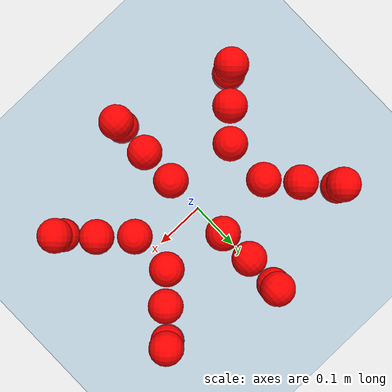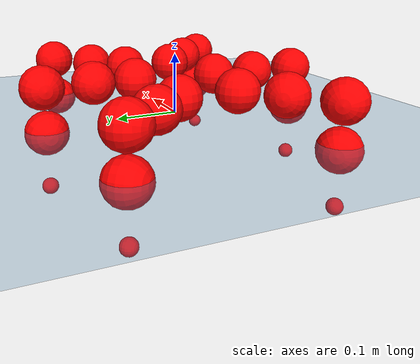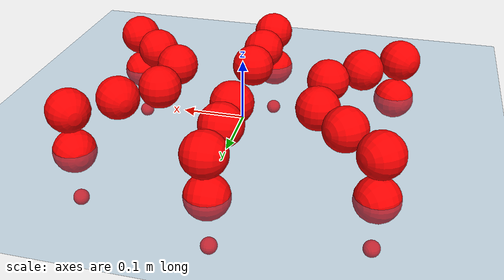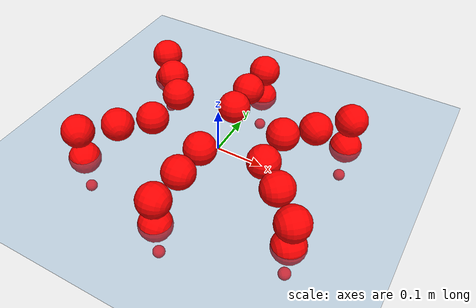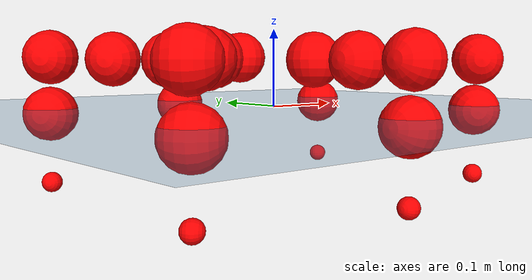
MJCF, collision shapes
<mujoco model="Golem">
  <compiler angle="radian" assetdir="assets" balanceinertia="true" inertiafromgeom="false"/>

  <option timestep="0.005" density="1.2" viscosity="2e-05"/>

  <size nkey="1"/>

  <visual>
    <quality shadowsize="8192"/>
    <map shadowclip="0.5"/>
  </visual>

  <default>
    <default class="/">
      <joint armature="0.01" damping="0.01" frictionloss="0.01"/>
      <geom contype="0" conaffinity="0" group="1" solref="-1000 -80"/>
      <site size="0.01 0.005 0.005" group="5"/>
      <general forcelimited="true" biastype="affine" gainprm="25" biasprm="0 -25 -0.5"/>
      <default class="visual">
        <geom type="mesh" group="2"/>
      </default>
      <default class="collision">
        <geom group="3"/>
      </default>
      <default class="foot">
        <geom size="0.01 0 0" condim="6" group="4" priority="1" solimp="0.015 1 0.01"/>
      </default>
      <default class="reward_collision_sphere">
        <geom group="5" rgba="1 0 0 1"/>
      </default>
    </default>
  </default>

  <asset>
    <texture type="skybox" colorspace="auto" name="//unnamed_texture_0" builtin="gradient" rgb1="0.95 0.95 0.95" rgb2="0.95 0.95 0.95" width="100" height="600"/>
    <texture type="2d" colorspace="auto" name="texplane" builtin="checker" rgb1="0.345 0.575 0.748" rgb2="0.345 0.575 0.748" markrgb="1 1 1" width="512" height="512"/>
    <material name="MatPlane" class="/" texture="texplane" texuniform="true" texrepeat="2 2" specular="0.9"/>
    <mesh name="body" class="/" file="body.stl" scale="0.001 0.001 0.001"/>
    <mesh name="coxa" class="/" file="coxa.stl" scale="0.001 0.001 0.001"/>
    <mesh name="femur" class="/" file="femur.stl" scale="0.001 0.001 0.001"/>
    <mesh name="tibia" class="/" file="tibia.stl" scale="0.001 0.001 0.001"/>
    <mesh name="tarsus" class="/" file="tarsus.stl" scale="0.001 0.001 0.001"/>
  </asset>

  <worldbody>
    <geom name="floor" class="/" size="100 100 0.125" type="plane" group="0" material="MatPlane"/>
    <light name="toplight_shadow" class="/" pos="0 0 5" dir="0.0990148 0.0990148 -0.990148" type="directional" ambient="0.04 0.04 0.04" diffuse="0.55 0.55 0.55" specular="0.12 0.12 0.12"/>
    <light name="toplight_fill" class="/" pos="0 0 5" dir="0.0990148 0.0990148 -0.990148" type="directional" castshadow="false" ambient="0.04 0.04 0.04" diffuse="0.3 0.3 0.3" specular="0.08 0.08 0.08"/>
    <body name="trunk" pos="-0.00107325 9.78645e-05 -0.00273355" quat="1 0.000393582 0.000209726 7.36392e-05">
      <inertial pos="0.000687681 0.00209796 -0.00531382" quat="0.999997 0.00156581 0.00101068 0.00138767" mass="2.37879" diaginertia="0.00363397 0.00224607 0.010975"/>
      <joint name="//unnamed_joint_0" type="free"/>
      <geom name="//unnamed_geom_1" class="/" pos="0 0 0.0648853" quat="1 0 0 0" type="mesh" rgba="0.9 0.9 0.9 1" mesh="body"/>
      <site name="imu" class="/" pos="0.101889 -0.000804302 0.114693" size="0.00855052"/>
      <camera name="track" class="/" pos="0 -1.47928 0" quat="0.707107 0.707107 0 0" mode="trackcom"/>
      <camera name="ego_camera" class="/" pos="0.105519 0 0.101383" quat="-0.5 -0.5 0.5 0.5"/>
      <body name="coxa_RR" pos="-0.146589 -0.062318 0.0647398" quat="0.382714 -0.00125122 6.12387e-06 -0.923866">
        <inertial pos="-0.00276042 -0.00170128 -0.000294456" quat="0.99991 -0.0079309 -0.00897769 -0.00603666" mass="0.124933" diaginertia="0.00350843 0.00218233 0.0102928"/>
        <joint name="coxa_joint_RR" class="/" pos="0 0 0" axis="-0.00574476 0.001984 -0.999982" stiffness="0.000919992" range="-3.15686 3.11694" armature="0.00871878" damping="0.0133844" frictionloss="0.00969929"/>
        <geom name="//unnamed_geom_2" class="/" type="mesh" rgba="0.2 0.2 0.2 1" mesh="coxa"/>
        <geom name="//unnamed_geom_3" class="reward_collision_sphere" size="0.0342021" pos="-0.0243505 0 0"/>
        <body name="femur_RR" pos="0.0483038 0.00192556 -0.00023951" quat="0.499924 -0.499921 0.500347 0.499808">
          <inertial pos="0.000308968 -0.000546219 0.00269238" quat="1 0.000239431 5.95461e-05 -0.000230312" mass="0.125332" diaginertia="0.00352379 0.0022235 0.0103762"/>
          <joint name="femur_joint_RR" class="/" pos="0 0 0" axis="0.00598426 0.0111507 -0.99992" range="-3.15065 3.13645" armature="0.00814775" damping="0" frictionloss="0.00872012"/>
          <geom name="//unnamed_geom_4" class="/" type="mesh" rgba="0.9 0.9 0.9 1" mesh="femur"/>
          <geom name="//unnamed_geom_5" class="reward_collision_sphere" size="0.0342021"/>
          <body name="tibia_RR" pos="0.00119938 -0.0801108 -0.00116111" quat="-2.27844e-05 1 3.8514e-05 3.58692e-05">
            <inertial pos="-0.00090924 0.00278918 -0.00273809" quat="0.999909 0.00962722 -0.00599245 -0.00735553" mass="0.123795" diaginertia="0.00335976 0.00219806 0.0104225"/>
            <joint name="tibia_joint_RR" class="/" pos="0 0 0" axis="-0.00115627 0.00154265 0.999998" stiffness="0.00151197" range="-3.13858 3.09371" armature="0.00834714" damping="0.0102007" frictionloss="0.00817255"/>
            <geom name="//unnamed_geom_6" class="/" type="mesh" rgba="0.2 0.2 0.2 1" mesh="tibia"/>
            <geom name="//unnamed_geom_7" class="reward_collision_sphere" size="0.0342021"/>
            <body name="tarsus_RR" pos="0.0727592 -0.00276026 -0.00267837" quat="0.999999 -0.000704265 -0.00114976 -0.000351542">
              <inertial pos="0.048385 -0.00233106 0.000406707" quat="0.504301 0.497336 0.499561 0.498775" mass="0.123192" diaginertia="0.00353941 0.00233093 0.0109985"/>
              <joint name="tarsus_joint_RR" class="/" pos="0 0 0" axis="0.000464806 0.00340593 0.999994" range="-3.13862 3.14995" armature="0.00836464" damping="0" frictionloss="0.00900107"/>
              <geom name="//unnamed_geom_8" class="/" type="mesh" rgba="0.9 0.9 0.9 1" mesh="tarsus"/>
              <geom name="foot_1" class="foot" size="0.00867628" pos="0.0909084 0 0" quat="0 -0.707107 0 0.707107"/>
              <geom name="//unnamed_geom_10" class="reward_collision_sphere" size="0.0342021"/>
              <geom name="//unnamed_geom_11" class="reward_collision_sphere" size="0.0128258" pos="0.0872559 0 0"/>
              <site name="foot_1" class="foot" pos="0.0909084 0 0" quat="0 -0.707107 0 0.707107" size="0.00855052"/>
            </body>
          </body>
        </body>
      </body>
      <body name="coxa_RM" pos="0.00197463 -0.0971342 0.0635023" quat="0.706783 0.000137641 -0.000377601 -0.70743">
        <inertial pos="-0.000139282 -0.00170578 -0.0022857" quat="0.999996 -0.00152263 -0.00180222 -0.00129504" mass="0.121012" diaginertia="0.00331541 0.00207533 0.0104234"/>
        <joint name="coxa_joint_RM" class="/" pos="0 0 0" axis="0.00298009 -0.00355291 -0.999989" stiffness="0.000521695" range="-3.13663 3.15917" armature="0.00824831" damping="0.0168384" frictionloss="0.00933731"/>
        <geom name="//unnamed_geom_12" class="/" type="mesh" rgba="0.2 0.2 0.2 1" mesh="coxa"/>
        <geom name="//unnamed_geom_13" class="reward_collision_sphere" size="0.0342021" pos="-0.0243505 0 0"/>
        <body name="femur_RM" pos="0.0497724 -0.00125831 -0.000691479" quat="0.499801 -0.499671 0.500957 0.499571">
          <inertial pos="0.000939884 -0.00199193 0.000348312" quat="0.999908 -0.00733908 0.0061664 -0.0095992" mass="0.123873" diaginertia="0.00363557 0.00218822 0.0106561"/>
          <joint name="femur_joint_RM" class="/" pos="0 0 0" axis="-0.000281008 0.000136573 -1" stiffness="0.00124944" range="-3.19266 3.19215" armature="0.00969712" damping="0.0266658" frictionloss="0.00842203"/>
          <geom name="//unnamed_geom_14" class="/" type="mesh" rgba="0.9 0.9 0.9 1" mesh="femur"/>
          <geom name="//unnamed_geom_15" class="reward_collision_sphere" size="0.0342021"/>
          <body name="tibia_RM" pos="-0.000864173 -0.0799848 -0.000587058" quat="-3.23774e-05 1 3.16399e-05 1.27094e-05">
            <inertial pos="0.000214931 0.000375297 -0.00263197" quat="0.999916 0.0105775 0.00695339 -0.00264852" mass="0.116768" diaginertia="0.00341209 0.00214232 0.0107114"/>
            <joint name="tibia_joint_RM" class="/" pos="0 0 0" axis="0.00176818 -0.00530841 0.999984" stiffness="0.00744106" range="-3.19174 3.08633" armature="0.00739337" damping="0" frictionloss="0.0086191"/>
            <geom name="//unnamed_geom_16" class="/" type="mesh" rgba="0.2 0.2 0.2 1" mesh="tibia"/>
            <geom name="//unnamed_geom_17" class="reward_collision_sphere" size="0.0342021"/>
            <body name="tarsus_RM" pos="0.0714186 -0.00179991 0.00316759" quat="1 5.37705e-05 -0.000301748 2.49709e-05">
              <inertial pos="0.0482592 0.000867496 -0.000276798" quat="0.492887 0.505294 0.495433 0.506248" mass="0.124841" diaginertia="0.00356808 0.00221767 0.0108427"/>
              <joint name="tarsus_joint_RM" class="/" pos="0 0 0" axis="-0.00497731 -0.00137628 0.999987" range="-3.14543 3.18734" armature="0.00862605" damping="0" frictionloss="0.009007"/>
              <geom name="//unnamed_geom_18" class="/" type="mesh" rgba="0.9 0.9 0.9 1" mesh="tarsus"/>
              <geom name="foot_2" class="foot" size="0.0076942" pos="0.0909084 0 0" quat="0 -0.707107 0 0.707107"/>
              <geom name="//unnamed_geom_20" class="reward_collision_sphere" size="0.0342021"/>
              <geom name="//unnamed_geom_21" class="reward_collision_sphere" size="0.0128258" pos="0.0872559 0 0"/>
              <site name="foot_2" class="foot" pos="0.0909084 0 0" quat="0 -0.707107 0 0.707107" size="0.00855052"/>
            </body>
          </body>
        </body>
      </body>
      <body name="coxa_RF" pos="0.143012 -0.060445 0.0641417" quat="0.923638 0.000527963 0.00109826 -0.383264">
        <inertial pos="0.00273695 -0.00270007 0.00140877" quat="0.999988 -0.00453708 0.001683 0.000105857" mass="0.126275" diaginertia="0.00363176 0.0022192 0.0106854"/>
        <joint name="coxa_joint_RF" class="/" pos="0 0 0" axis="-0.00147155 0.010003 -0.999949" range="-3.13479 3.16065" armature="0.00847173" damping="0" frictionloss="0.00843532"/>
        <geom name="//unnamed_geom_22" class="/" type="mesh" rgba="0.2 0.2 0.2 1" mesh="coxa"/>
        <geom name="//unnamed_geom_23" class="reward_collision_sphere" size="0.0342021" pos="-0.0243505 0 0"/>
        <body name="femur_RF" pos="0.0484631 0.00209992 0.0021862" quat="0.500553 -0.498958 0.500433 0.500055">
          <inertial pos="-0.000788 0.000669083 -0.000578528" quat="0.999971 -0.00735907 -2.11827e-05 -0.00210108" mass="0.12366" diaginertia="0.00349537 0.00216797 0.0106194"/>
          <joint name="femur_joint_RF" class="/" pos="0 0 0" axis="0.00244756 0.00164778 -0.999996" range="-3.11827 3.16607" armature="0.00904646" damping="0.00969223" frictionloss="0.00835997"/>
          <geom name="//unnamed_geom_24" class="/" type="mesh" rgba="0.9 0.9 0.9 1" mesh="femur"/>
          <geom name="//unnamed_geom_25" class="reward_collision_sphere" size="0.0342021"/>
          <body name="tibia_RF" pos="0.00174106 -0.0803721 -0.000321541" quat="0.000216309 1 -0.000545841 0.000115465">
            <inertial pos="0.00070198 -0.00242206 -1.37271e-05" quat="0.999997 -0.00197819 -0.000558999 -0.00108208" mass="0.122038" diaginertia="0.00342217 0.00213383 0.0107268"/>
            <joint name="tibia_joint_RF" class="/" pos="0 0 0" axis="0.00271637 -0.00175325 0.999995" stiffness="0.005459" range="-3.1429 3.08502" armature="0.00854899" damping="0" frictionloss="0.00852348"/>
            <geom name="//unnamed_geom_26" class="/" type="mesh" rgba="0.2 0.2 0.2 1" mesh="tibia"/>
            <geom name="//unnamed_geom_27" class="reward_collision_sphere" size="0.0342021"/>
            <body name="tarsus_RF" pos="0.0687302 -0.00306079 1.64865e-05" quat="0.999999 -0.000335838 -0.000918286 0.000416531">
              <inertial pos="0.0481438 0.00017493 -0.000982145" quat="0.500073 0.500173 0.499866 0.499889" mass="0.126722" diaginertia="0.00354288 0.00228961 0.0107631"/>
              <joint name="tarsus_joint_RF" class="/" pos="0 0 0" axis="-0.00344122 -0.00149409 0.999993" range="-3.15217 3.15928" armature="0.00809045" damping="0" frictionloss="0.0089585"/>
              <geom name="//unnamed_geom_28" class="/" type="mesh" rgba="0.9 0.9 0.9 1" mesh="tarsus"/>
              <geom name="foot_3" class="foot" size="0.00836109" pos="0.0909084 0 0" quat="0 -0.707107 0 0.707107"/>
              <geom name="//unnamed_geom_30" class="reward_collision_sphere" size="0.0342021"/>
              <geom name="//unnamed_geom_31" class="reward_collision_sphere" size="0.0128258" pos="0.0872559 0 0"/>
              <site name="foot_3" class="foot" pos="0.0909084 0 0" quat="0 -0.707107 0 0.707107" size="0.00855052"/>
            </body>
          </body>
        </body>
      </body>
      <body name="coxa_LR" pos="-0.145085 0.0661856 0.0631386" quat="0.382531 -2.75807e-05 -9.00742e-05 0.923943">
        <inertial pos="0.000629823 -0.000272652 -0.00202704" quat="0.999938 -0.0109795 0.00177413 -0.000481281" mass="0.120412" diaginertia="0.00341222 0.00220842 0.0104769"/>
        <joint name="coxa_joint_LR" class="/" pos="0 0 0" axis="-0.00448201 -0.007332 -0.999963" stiffness="0.0078915" range="-3.14296 3.15953" armature="0.0086215" damping="0.0155275" frictionloss="0.00960153"/>
        <geom name="//unnamed_geom_32" class="/" type="mesh" rgba="0.2 0.2 0.2 1" mesh="coxa"/>
        <geom name="//unnamed_geom_33" class="reward_collision_sphere" size="0.0342021" pos="-0.0243505 0 0"/>
        <body name="femur_LR" pos="0.0470604 -0.00360294 0.000795495" quat="0.50026 -0.500618 0.499824 0.499298">
          <inertial pos="-1.61644e-05 -0.000770652 -0.0028219" quat="0.999983 -0.00138829 0.000651813 -0.00569275" mass="0.122667" diaginertia="0.00339874 0.00213382 0.010275"/>
          <joint name="femur_joint_LR" class="/" pos="0 0 0" axis="0.0119548 0.00479591 0.999917" range="-3.1447 3.14094" armature="0.00931824" damping="0.0126415" frictionloss="0.00894141"/>
          <geom name="//unnamed_geom_34" class="/" type="mesh" rgba="0.9 0.9 0.9 1" mesh="femur"/>
          <geom name="//unnamed_geom_35" class="reward_collision_sphere" size="0.0342021"/>
          <body name="tibia_LR" pos="-0.00223326 -0.080982 -0.00286211" quat="-4.26235e-05 1 -0.000121995 3.02768e-05">
            <inertial pos="0.000539936 0.00280923 7.67958e-05" quat="0.999988 0.00450925 0.00176371 0.000376286" mass="0.127812" diaginertia="0.00346862 0.00224509 0.0112825"/>
            <joint name="tibia_joint_LR" class="/" pos="0 0 0" axis="-0.0044859 0.0108056 -0.999932" stiffness="0.000518322" range="-3.08904 3.08999" armature="0.00959364" damping="0" frictionloss="0.00944463"/>
            <geom name="//unnamed_geom_36" class="/" type="mesh" rgba="0.2 0.2 0.2 1" mesh="tibia"/>
            <geom name="//unnamed_geom_37" class="reward_collision_sphere" size="0.0342021"/>
            <body name="tarsus_LR" pos="0.0713256 0.0010925 0.000243523" quat="1 0.00040741 0.000114492 6.99864e-05">
              <inertial pos="0.0515743 0.00134412 -0.00221898" quat="0.500499 0.499524 0.500289 0.499688" mass="0.123879" diaginertia="0.00359341 0.00222882 0.0105058"/>
              <joint name="tarsus_joint_LR" class="/" pos="0 0 0" axis="-0.00383993 -0.00362657 -0.999986" range="-3.10571 3.11052" armature="0.00750984" damping="0.0182168" frictionloss="0.00852897"/>
              <geom name="//unnamed_geom_38" class="/" type="mesh" rgba="0.9 0.9 0.9 1" mesh="tarsus"/>
              <geom name="foot_4" class="foot" size="0.00866537" pos="0.0909084 0 0" quat="0.707107 0 -0.707107 0"/>
              <geom name="//unnamed_geom_40" class="reward_collision_sphere" size="0.0342021"/>
              <geom name="//unnamed_geom_41" class="reward_collision_sphere" size="0.0128258" pos="0.0872559 0 0"/>
              <site name="foot_4" class="foot" pos="0.0909084 0 0" quat="0.707107 0 -0.707107 0" size="0.00855052"/>
            </body>
          </body>
        </body>
      </body>
      <body name="coxa_LM" pos="1.17312e-05 0.0937859 0.0660927" quat="0.7072 -0.000167788 0.000233692 0.707013">
        <inertial pos="0.000210744 -0.00275028 0.00252935" quat="0.999989 -0.00418029 0.00087018 -0.00202785" mass="0.129265" diaginertia="0.00356953 0.00224361 0.0108834"/>
        <joint name="coxa_joint_LM" class="/" pos="0 0 0" axis="-0.00552195 -0.0116432 -0.999917" range="-3.13995 3.14131" armature="0.00742592" damping="0.0129192" frictionloss="0.00862207"/>
        <geom name="//unnamed_geom_42" class="/" type="mesh" rgba="0.2 0.2 0.2 1" mesh="coxa"/>
        <geom name="//unnamed_geom_43" class="reward_collision_sphere" size="0.0342021" pos="-0.0243505 0 0"/>
        <body name="femur_LM" pos="0.0449692 0.00295478 0.000920147" quat="0.499942 -0.500023 0.500128 0.499907">
          <inertial pos="-0.0026366 0.00150189 -0.00197349" quat="1 9.02146e-05 -0.000148544 -0.000220987" mass="0.121558" diaginertia="0.00342085 0.00217651 0.0102323"/>
          <joint name="femur_joint_LM" class="/" pos="0 0 0" axis="0.0069413 0.0140708 0.999877" stiffness="0.00785662" range="-3.1391 3.14077" armature="0.00896938" damping="0.00069637" frictionloss="0.00962266"/>
          <geom name="//unnamed_geom_44" class="/" type="mesh" rgba="0.9 0.9 0.9 1" mesh="femur"/>
          <geom name="//unnamed_geom_45" class="reward_collision_sphere" size="0.0342021"/>
          <body name="tibia_LM" pos="0.00051645 -0.0790526 -0.000704975" quat="-3.19285e-05 1 6.66011e-05 -0.000289673">
            <inertial pos="-0.00114304 -0.000310717 0.00238899" quat="0.999921 0.0102225 -0.00727096 -0.000667434" mass="0.122199" diaginertia="0.00351936 0.00224638 0.0104691"/>
            <joint name="tibia_joint_LM" class="/" pos="0 0 0" axis="0.00265744 0.00289717 -0.999992" stiffness="0.00683155" range="-3.15546 3.1934" armature="0.00797188" damping="0" frictionloss="0.00882078"/>
            <geom name="//unnamed_geom_46" class="/" type="mesh" rgba="0.2 0.2 0.2 1" mesh="tibia"/>
            <geom name="//unnamed_geom_47" class="reward_collision_sphere" size="0.0342021"/>
            <body name="tarsus_LM" pos="0.0709123 -0.0032127 -0.00115424" quat="1 1.36568e-05 -1.83097e-05 1.96402e-05">
              <inertial pos="0.0514436 0.000963592 0.000398928" quat="0.499724 0.500101 0.499809 0.500365" mass="0.124602" diaginertia="0.00356352 0.0022335 0.0110215"/>
              <joint name="tarsus_joint_LM" class="/" pos="0 0 0" axis="0.00301723 0.00258234 -0.999992" range="-3.13971 3.12924" armature="0.0087914" damping="0" frictionloss="0.00886241"/>
              <geom name="//unnamed_geom_48" class="/" type="mesh" rgba="0.9 0.9 0.9 1" mesh="tarsus"/>
              <geom name="foot_5" class="foot" size="0.00849288" pos="0.0909084 0 0" quat="0.707107 0 -0.707107 0"/>
              <geom name="//unnamed_geom_50" class="reward_collision_sphere" size="0.0342021"/>
              <geom name="//unnamed_geom_51" class="reward_collision_sphere" size="0.0128258" pos="0.0872559 0 0"/>
              <site name="foot_5" class="foot" pos="0.0909084 0 0" quat="0.707107 0 -0.707107 0" size="0.00855052"/>
            </body>
          </body>
        </body>
      </body>
      <body name="coxa_LF" pos="0.142066 0.0614542 0.0651005" quat="0.923796 9.21154e-05 0.000529856 0.382885">
        <inertial pos="0.00264899 0.000144936 6.44958e-05" quat="0.999907 0.00760419 -0.0112301 -0.00153135" mass="0.12581" diaginertia="0.00363857 0.00219303 0.0107113"/>
        <joint name="coxa_joint_LF" class="/" pos="0 0 0" axis="-0.000789503 -0.00196466 -0.999998" range="-3.15906 3.08399" armature="0.00808771" damping="0.0130822" frictionloss="0.00865096"/>
        <geom name="//unnamed_geom_52" class="/" type="mesh" rgba="0.2 0.2 0.2 1" mesh="coxa"/>
        <geom name="//unnamed_geom_53" class="reward_collision_sphere" size="0.0342021" pos="-0.0243505 0 0"/>
        <body name="femur_LF" pos="0.0461003 -0.00056646 -0.000508211" quat="0.500006 -0.500219 0.500051 0.499725">
          <inertial pos="-0.00264051 0.00210865 -0.000682367" quat="0.999998 -0.000354088 -0.000894683 0.00146206" mass="0.125563" diaginertia="0.00340449 0.0022067 0.0107123"/>
          <joint name="femur_joint_LF" class="/" pos="0 0 0" axis="-0.00105174 -0.0148416 0.999889" range="-3.19454 3.13913" armature="0.00850386" damping="0" frictionloss="0.00856704"/>
          <geom name="//unnamed_geom_54" class="/" type="mesh" rgba="0.9 0.9 0.9 1" mesh="femur"/>
          <geom name="//unnamed_geom_55" class="reward_collision_sphere" size="0.0342021"/>
          <body name="tibia_LF" pos="-0.00173417 -0.0796435 0.00298078" quat="-0.000562884 0.999999 -0.000739319 -0.000626382">
            <inertial pos="-0.00259256 0.000139456 0.000775294" quat="0.999925 0.0047438 0.00252664 0.0110003" mass="0.128978" diaginertia="0.00342656 0.00218833 0.0107205"/>
            <joint name="tibia_joint_LF" class="/" pos="0 0 0" axis="0.00307365 0.00336474 -0.99999" stiffness="0.000988341" range="-3.13632 3.1514" armature="0.00870573" damping="0.00556276" frictionloss="0.00900368"/>
            <geom name="//unnamed_geom_56" class="/" type="mesh" rgba="0.2 0.2 0.2 1" mesh="tibia"/>
            <geom name="//unnamed_geom_57" class="reward_collision_sphere" size="0.0342021"/>
            <body name="tarsus_LF" pos="0.0717803 -0.00218863 0.00123337" quat="1 0.00020864 -0.000327009 8.46956e-05">
              <inertial pos="0.0475019 5.37929e-05 -0.00243993" quat="0.500522 0.49987 0.502969 0.496618" mass="0.116749" diaginertia="0.00338244 0.00214298 0.0103482"/>
              <joint name="tarsus_joint_LF" class="/" pos="0 0 0" axis="-0.00152317 0.00444839 -0.999989" range="-3.12388 3.16216" armature="0.00817777" damping="0.0236874" frictionloss="0.00876023"/>
              <geom name="//unnamed_geom_58" class="/" type="mesh" rgba="0.9 0.9 0.9 1" mesh="tarsus"/>
              <geom name="foot_6" class="foot" size="0.00923405" pos="0.0909084 0 0" quat="0.707107 0 -0.707107 0"/>
              <geom name="//unnamed_geom_60" class="reward_collision_sphere" size="0.0342021"/>
              <geom name="//unnamed_geom_61" class="reward_collision_sphere" size="0.0128258" pos="0.0872559 0 0"/>
              <site name="foot_6" class="foot" pos="0.0909084 0 0" quat="0.707107 0 -0.707107 0" size="0.00855052"/>
            </body>
          </body>
        </body>
      </body>
    </body>
  </worldbody>

  <contact>
    <pair class="/" geom1="floor" geom2="foot_1" name="//unnamed_contact_0"/>
    <pair class="/" geom1="floor" geom2="foot_2" name="//unnamed_contact_1"/>
    <pair class="/" geom1="floor" geom2="foot_3" name="//unnamed_contact_2"/>
    <pair class="/" geom1="floor" geom2="foot_4" name="//unnamed_contact_3"/>
    <pair class="/" geom1="floor" geom2="foot_5" name="//unnamed_contact_4"/>
    <pair class="/" geom1="floor" geom2="foot_6" name="//unnamed_contact_5"/>
  </contact>

  <actuator>
    <general name="coxa_joint_RR" class="/" joint="coxa_joint_RR" forcerange="-6.26987 6.26987" gainprm="20.7874" biasprm="0 -20.7874 -0.461479"/>
    <general name="femur_joint_RR" class="/" joint="femur_joint_RR" forcerange="-6.67495 6.67495" gainprm="20.7874" biasprm="0 -20.7874 -0.461479"/>
    <general name="tibia_joint_RR" class="/" joint="tibia_joint_RR" forcerange="-5.61255 5.61255" gainprm="20.7874" biasprm="0 -20.7874 -0.461479"/>
    <general name="tarsus_joint_RR" class="/" joint="tarsus_joint_RR" forcerange="-6.30019 6.30019" gainprm="20.7874" biasprm="0 -20.7874 -0.461479"/>
    <general name="coxa_joint_RM" class="/" joint="coxa_joint_RM" forcerange="-6.80836 6.80836" gainprm="20.7874" biasprm="0 -20.7874 -0.461479"/>
    <general name="femur_joint_RM" class="/" joint="femur_joint_RM" forcerange="-6.21389 6.21389" gainprm="20.7874" biasprm="0 -20.7874 -0.461479"/>
    <general name="tibia_joint_RM" class="/" joint="tibia_joint_RM" forcerange="-6.33388 6.33388" gainprm="20.7874" biasprm="0 -20.7874 -0.461479"/>
    <general name="tarsus_joint_RM" class="/" joint="tarsus_joint_RM" forcerange="-5.61057 5.61057" gainprm="20.7874" biasprm="0 -20.7874 -0.461479"/>
    <general name="coxa_joint_RF" class="/" joint="coxa_joint_RF" forcerange="-6.84834 6.84834" gainprm="20.7874" biasprm="0 -20.7874 -0.461479"/>
    <general name="femur_joint_RF" class="/" joint="femur_joint_RF" forcerange="-6.2051 6.2051" gainprm="20.7874" biasprm="0 -20.7874 -0.461479"/>
    <general name="tibia_joint_RF" class="/" joint="tibia_joint_RF" forcerange="-6.11465 6.11465" gainprm="20.7874" biasprm="0 -20.7874 -0.461479"/>
    <general name="tarsus_joint_RF" class="/" joint="tarsus_joint_RF" forcerange="-6.24154 6.24154" gainprm="20.7874" biasprm="0 -20.7874 -0.461479"/>
    <general name="coxa_joint_LR" class="/" joint="coxa_joint_LR" forcerange="-6.88292 6.88292" gainprm="20.7874" biasprm="0 -20.7874 -0.461479"/>
    <general name="femur_joint_LR" class="/" joint="femur_joint_LR" forcerange="-6.21549 6.21549" gainprm="20.7874" biasprm="0 -20.7874 -0.461479"/>
    <general name="tibia_joint_LR" class="/" joint="tibia_joint_LR" forcerange="-6.7926 6.7926" gainprm="20.7874" biasprm="0 -20.7874 -0.461479"/>
    <general name="tarsus_joint_LR" class="/" joint="tarsus_joint_LR" forcerange="-6.87386 6.87386" gainprm="20.7874" biasprm="0 -20.7874 -0.461479"/>
    <general name="coxa_joint_LM" class="/" joint="coxa_joint_LM" forcerange="-5.61804 5.61804" gainprm="20.7874" biasprm="0 -20.7874 -0.461479"/>
    <general name="femur_joint_LM" class="/" joint="femur_joint_LM" forcerange="-6.14344 6.14344" gainprm="20.7874" biasprm="0 -20.7874 -0.461479"/>
    <general name="tibia_joint_LM" class="/" joint="tibia_joint_LM" forcerange="-6.88198 6.88198" gainprm="20.7874" biasprm="0 -20.7874 -0.461479"/>
    <general name="tarsus_joint_LM" class="/" joint="tarsus_joint_LM" forcerange="-6.82797 6.82797" gainprm="20.7874" biasprm="0 -20.7874 -0.461479"/>
    <general name="coxa_joint_LF" class="/" joint="coxa_joint_LF" forcerange="-5.70923 5.70923" gainprm="20.7874" biasprm="0 -20.7874 -0.461479"/>
    <general name="femur_joint_LF" class="/" joint="femur_joint_LF" forcerange="-5.73307 5.73307" gainprm="20.7874" biasprm="0 -20.7874 -0.461479"/>
    <general name="tibia_joint_LF" class="/" joint="tibia_joint_LF" forcerange="-6.31515 6.31515" gainprm="20.7874" biasprm="0 -20.7874 -0.461479"/>
    <general name="tarsus_joint_LF" class="/" joint="tarsus_joint_LF" forcerange="-6.03733 6.03733" gainprm="20.7874" biasprm="0 -20.7874 -0.461479"/>
  </actuator>

  <sensor>
    <gyro site="imu" name="imu_angular_velocity"/>
    <velocimeter site="imu" name="imu_linear_velocity"/>
    <framelinvel objtype="site" objname="foot_1" name="foot_1_global_linear_velocity"/>
    <framelinvel objtype="site" objname="foot_2" name="foot_2_global_linear_velocity"/>
    <framelinvel objtype="site" objname="foot_3" name="foot_3_global_linear_velocity"/>
    <framelinvel objtype="site" objname="foot_4" name="foot_4_global_linear_velocity"/>
    <framelinvel objtype="site" objname="foot_5" name="foot_5_global_linear_velocity"/>
    <framelinvel objtype="site" objname="foot_6" name="foot_6_global_linear_velocity"/>
  </sensor>

  <keyframe>
    <key name="home" qpos="0 0 0.1457 1 0 0 0 0 0 0 0 0 0 0 0 0 0 0 0 0 0 0 0 0 0 0 0 0 0 0 0"/>
  </keyframe>
</mujoco>
